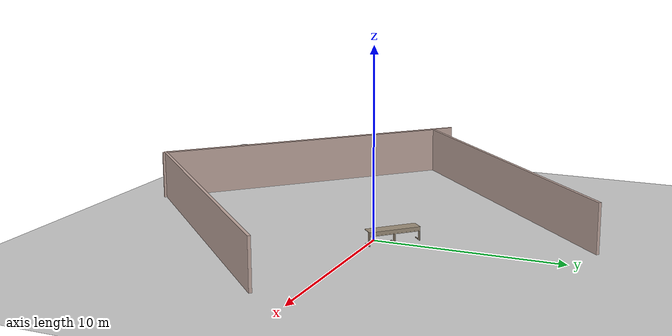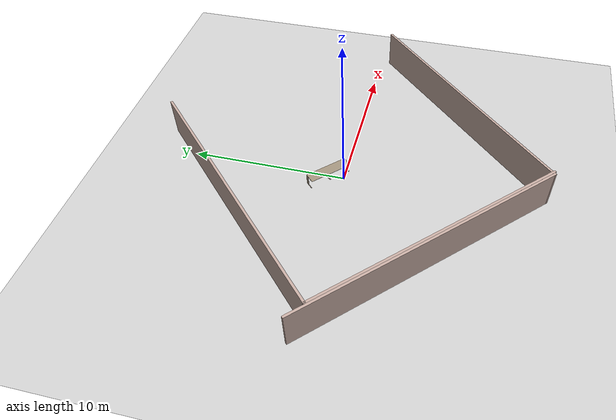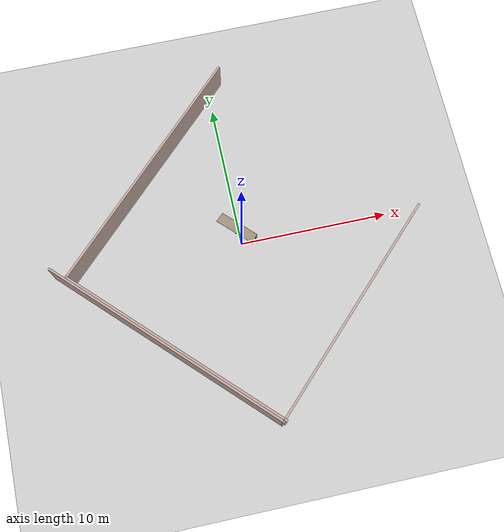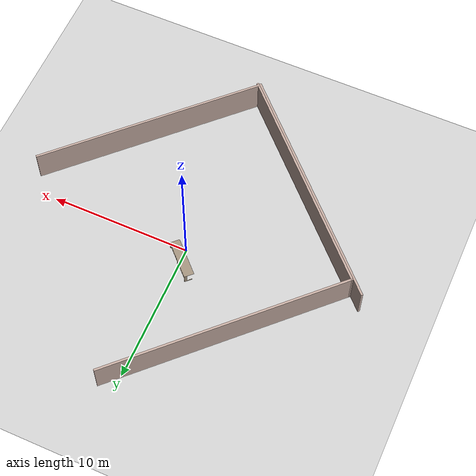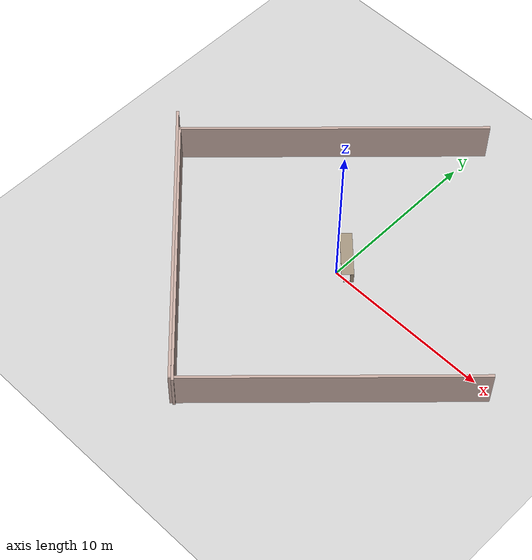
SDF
<?xml version="1.0" ?>
<sdf version="1.4">
  <world name="default">
    <!-- Floor -->
    <include>
      <uri>model://ground</uri>
      <pose>-0.20 0.60 0.0 0 0 2.35619</pose>
    </include>
    <light type="directional" name="lab_light">
      <pose>0.86 1.96 2.5 -1.55 0 0</pose>
      <diffuse>.8 .8 .8 1</diffuse>
      <specular>.2 .2 .2 1</specular>
      <attenuation>
        <range>20</range>
        <constant>0.9</constant>
        <linear>0.01</linear>
        <quadratic>0.001</quadratic>
      </attenuation>
      <direction>0 0 -1</direction>
      <cast_shadows>true</cast_shadows>
    </light>
    <include>
      <uri>model://lab_table</uri>
      <static>true</static>
      <name>lab_table</name>
      <pose>-0.14 0.96 0.0 0 0 2.35619</pose>
    </include>
    <!-- Rear wall -->
    <include>
      <uri>model://wall</uri>
      <static>true</static>
      <name>wall_1</name>
      <pose>-0.48861 -0.48861 1.0 0 0 2.35619</pose>
    </include>
    <!-- Left wall -->
    <include>
      <uri>model://wall</uri>
      <static>true</static>
      <name>wall_2</name>
      <pose>0.46315 -0.46315 1.0 0 0 0.785398</pose>
    </include>
    <!-- Ceiling -->
    <include>
      <uri>model://ground</uri>
      <static>true</static>
      <name>ground_2</name>
      <pose>-0.2 0.6 1.907 0 0 2.35619</pose>
    </include>
    <physics type="ode">
      <gravity>0.000000 0.000000 -9.810000</gravity>
      <ode>
        <solver>
          <type>quick</type>
          <iters>100</iters>
          <precon_iters>0</precon_iters>
          <sor>1.000000</sor>
        </solver>
        <constraints>
          <cfm>0.000000</cfm>
          <erp>0.500000</erp>
          <contact_max_correcting_vel>1000.000000</contact_max_correcting_vel>
          <contact_surface_layer>0.00000</contact_surface_layer>
        </constraints>
      </ode>
      <real_time_update_rate>0.000000</real_time_update_rate>
      <max_step_size>0.001000</max_step_size>
    </physics>
    <scene>
      <ambient>0.4 0.4 0.4 1</ambient>
      <background>0.7 0.7 1 1</background>
      <shadows>1</shadows>
    </scene>
    <gui fullscreen='0'>
      <camera name='user_camera'>
        <pose frame=''>2.8784 4.2586 1.43117 0 0.083643 -2.30699</pose>
        <view_controller>orbit</view_controller>
      </camera>
    </gui>
  </world>
</sdf>

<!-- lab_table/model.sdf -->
<sdf version="1.9">
  <model name="lab_table">
    <static>true</static>
    <link name="lab_table_link">
      <visual name="lab_table_visual">
        <pose>-1.4 -0.35 0.72 0 0 0</pose>
        <geometry>
          <mesh>
            <uri>model://lab_table/meshes/table.stl</uri>
          </mesh>
        </geometry>
        <material>
          <ambient>0.62 0.56 0.48 1.0</ambient>
          <diffuse>0.62 0.56 0.48 1.0</diffuse>
          <specular>0.12 0.12 0.12 1.0</specular>
          <emissive>0.0 0.0 0.0 0.0</emissive>
        </material>
      </visual>
      <collision name="lab_table_collision">
        <pose>-1.4 -0.35 0.72 0 0 0</pose>
        <geometry>
          <mesh>
            <uri>model://lab_table/meshes/table.stl</uri>
          </mesh>
        </geometry>
      </collision>
    </link>
  </model>
</sdf>

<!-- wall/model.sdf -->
<sdf version='1.6'>
  <model name='wall'>
    <pose frame=''>-1.26581 1.80502 0 0 -0 0</pose>
    <link name='Wall_0'>
      <collision name='Wall_0_Collision'>
        <geometry>
          <box>
            <size>16.5 0.15 2.5</size>
          </box>
        </geometry>
        <pose frame=''>0 0 1.25 0 -0 0</pose>
      </collision>
      <visual name='Wall_0_Visual'>
        <pose frame=''>0 0 1.25 0 -0 0</pose>
        <geometry>
          <box>
            <size>16.5 0.15 2.5</size>
          </box>
        </geometry>
        <material>
          <script>
            <uri>file://media/materials/scripts/gazebo.material</uri>
            <name>Gazebo/Grey</name>
          </script>
          <ambient>0.760784 0.662745 0.627451 1</ambient>
        </material>
        <meta>
          <layer>0</layer>
        </meta>
      </visual>
      <pose frame=''>-8.71419 -1.8e-05 0 0 0 -1.5708</pose>
    </link>
    <link name='Wall_2'>
      <collision name='Wall_2_Collision'>
        <geometry>
          <box>
            <size>17.5784 0.15 2.5</size>
          </box>
        </geometry>
        <pose frame=''>0 0 1.25 0 -0 0</pose>
      </collision>
      <visual name='Wall_2_Visual'>
        <pose frame=''>0 0 1.25 0 -0 0</pose>
        <geometry>
          <box>
            <size>17.5784 0.15 2.5</size>
          </box>
        </geometry>
        <material>
          <script>
            <uri>file://media/materials/scripts/gazebo.material</uri>
            <name>Gazebo/Grey</name>
          </script>
          <ambient>0.760784 0.662745 0.627451 1</ambient>
        </material>
        <meta>
          <layer>0</layer>
        </meta>
      </visual>
      <pose frame=''>0 8.17066 0 0 0 -0.000496</pose>
    </link>
    <static>1</static>
  </model>
</sdf>
